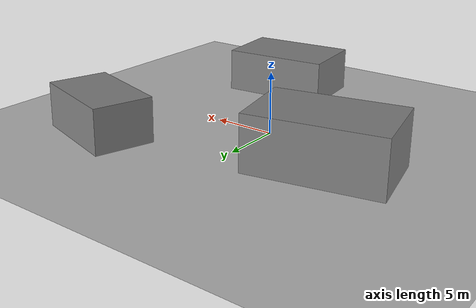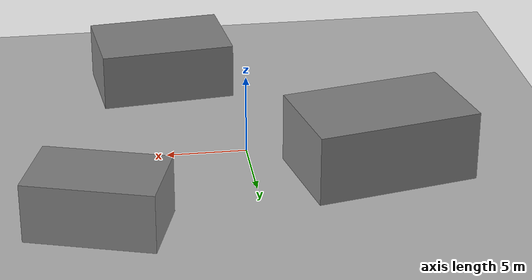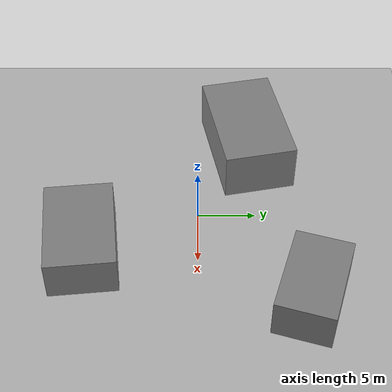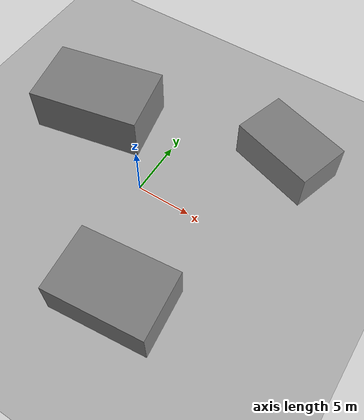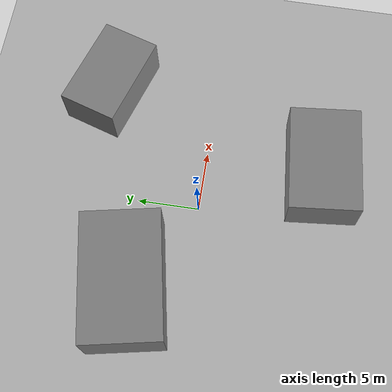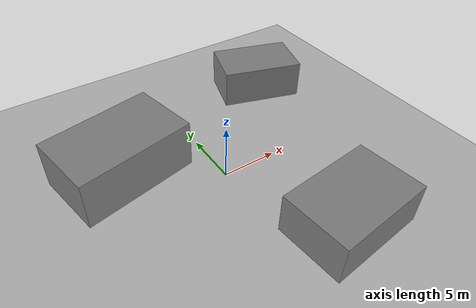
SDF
<?xml version="1.0" ?>
<sdf version='1.7'>
  <world name='default'>
    <light name='sun' type='directional'>
      <cast_shadows>1</cast_shadows>
      <pose>0 0 30 0 0 0</pose>
      <diffuse>0.8 0.8 0.8 1</diffuse>
      <specular>0.2 0.2 0.2 1</specular>
      <attenuation>
        <range>1000</range>
        <constant>0.9</constant>
        <linear>0.01</linear>
        <quadratic>0.001</quadratic>
      </attenuation>
      <direction>-0.5 0.1 -0.9</direction>
    </light>

    <model name='ground_plane'>
      <static>1</static>
      <link name='link'>
        <collision name='collision'>
          <geometry>
            <plane>
              <normal>0 0 1</normal>
              <size>500 500</size>
            </plane>
          </geometry>
        </collision>
        <visual name='visual'>
          <cast_shadows>0</cast_shadows>
          <geometry>
            <plane>
              <normal>0 0 1</normal>
              <size>500 500</size>
            </plane>
          </geometry>
          <material>
            <ambient>0.7 0.7 0.7 1</ambient>
            <diffuse>0.7 0.7 0.7 1</diffuse>
            <specular>0.2 0.2 0.2 1</specular>
          </material>
        </visual>
      </link>
    </model>

    <gravity>0 0 -9.8</gravity>
    <atmosphere type='adiabatic'/>
    <physics type='ode'>
      <max_step_size>0.004</max_step_size>
      <real_time_factor>1</real_time_factor>
      <real_time_update_rate>250</real_time_update_rate>
    </physics>

    <plugin filename="ignition-gazebo-physics-system" name="gz::sim::systems::Physics"/>
    <plugin filename="ignition-gazebo-sensors-system" name="gz::sim::systems::Sensors">
      <render_engine>ogre2</render_engine>
    </plugin>
    <plugin filename="ignition-gazebo-user-commands-system" name="gz::sim::systems::UserCommands"/>
    <plugin filename="ignition-gazebo-scene-broadcaster-system" name="gz::sim::systems::SceneBroadcaster"/>

    <scene>
      <ambient>0.4 0.4 0.4 1</ambient>
      <background>0.7 0.7 0.7 1</background>
      <shadows>1</shadows>
    </scene>

    <!-- (a) 近似：一个 13m x 11m 房间 + 3 个大障碍块 -->
    <model name='arena_a'>
      <static>1</static>
      <pose>0 0 0 0 0 0</pose>

      <!-- blocks (整体放大 3 倍；去掉外边界围墙) -->
      <link name='block_01'>
        <pose>-7.5 4.5 2.7 0 0 0.2</pose>
        <collision name='collision'><geometry><box><size>10.08 6.24 4.32</size></box></geometry></collision>
        <visual name='visual'>
          <geometry><box><size>10.08 6.24 4.32</size></box></geometry>
          <material><ambient>0.5 0.5 0.5 1</ambient><diffuse>0.5 0.5 0.5 1</diffuse></material>
        </visual>
      </link>
      <link name='block_02'>
        <pose>9.6 9.0 2.25 0 0 -0.3</pose>
        <collision name='collision'><geometry><box><size>7.68 4.8 3.6</size></box></geometry></collision>
        <visual name='visual'>
          <geometry><box><size>7.68 4.8 3.6</size></box></geometry>
          <material><ambient>0.5 0.5 0.5 1</ambient><diffuse>0.5 0.5 0.5 1</diffuse></material>
        </visual>
      </link>
      <link name='block_03'>
        <pose>4.5 -9.6 2.25 0 0 0.1</pose>
        <collision name='collision'><geometry><box><size>8.64 5.76 3.6</size></box></geometry></collision>
        <visual name='visual'>
          <geometry><box><size>8.64 5.76 3.6</size></box></geometry>
          <material><ambient>0.5 0.5 0.5 1</ambient><diffuse>0.5 0.5 0.5 1</diffuse></material>
        </visual>
      </link>
    </model>

    <gui fullscreen='0'>
      <camera name='user_camera'>
        <pose>-54 0 42 0 0.7 0</pose>
        <view_controller>orbit</view_controller>
        <projection_type>perspective</projection_type>
      </camera>
    </gui>
  </world>
</sdf>
